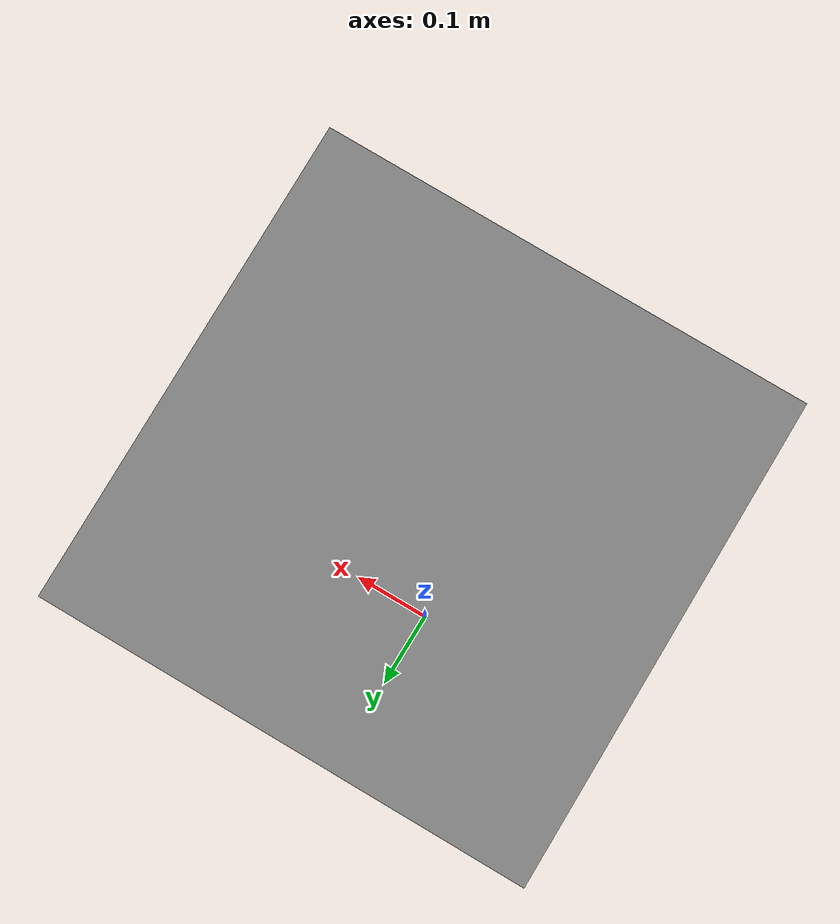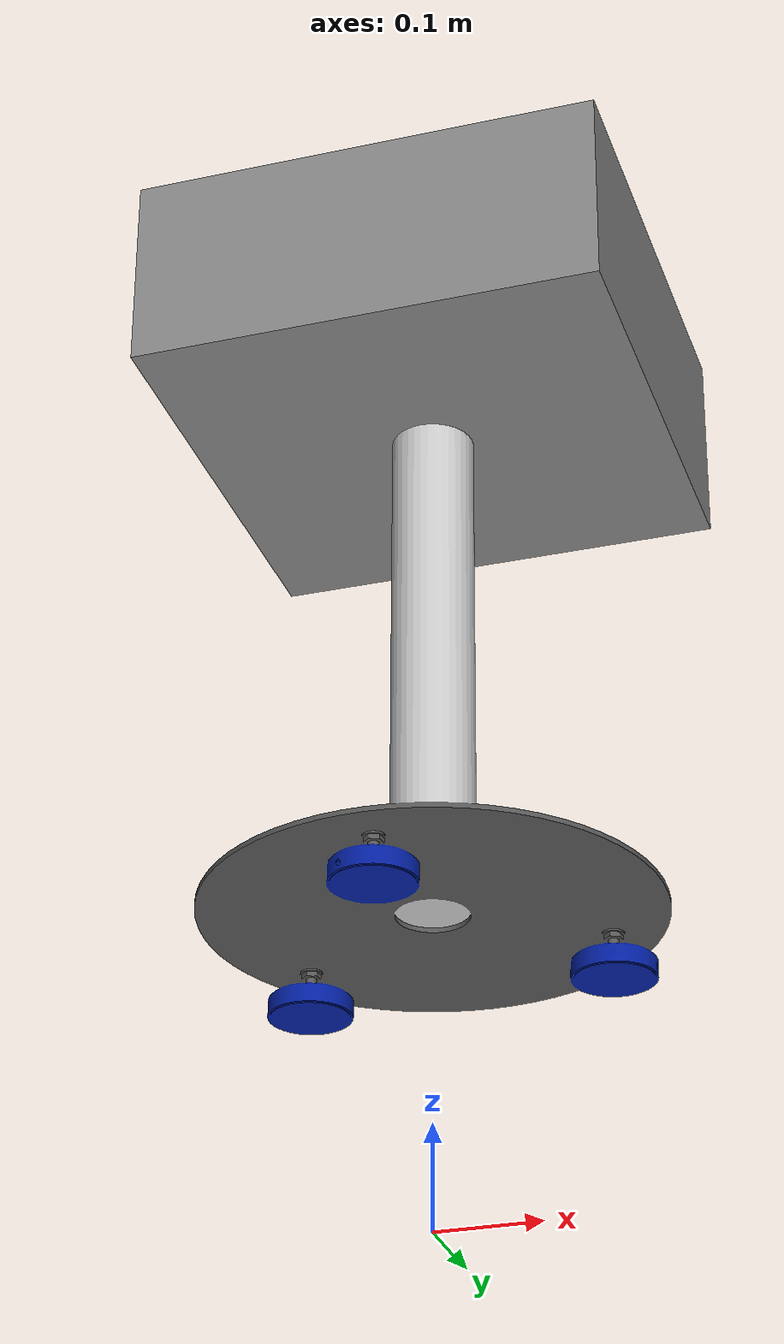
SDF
<?xml version="1.0"?>
<sdf version="1.5">
  <model name="spacecraft-simulator">
    <pose>0 0 0.25 0 0 0</pose>
    <!-- static = false allows the object to be movable -->
    <static>false</static>
    <link name="spacecraft-simulator">
      <inertial>
        <!-- should spawn 0.25 m off the ground to account for blackroom floor thickness. -->
        <mass>15</mass>
      </inertial>
      <collision name="collision">
        <geometry>
          <mesh>
            <uri>model://spacecraft-simulator/mesh/spacecraft-simulator-simple.dae</uri>
          </mesh>
        </geometry>
        <surface>
          <!-- spacecraft simulators are designed to be frictionless -->
          <contact>
            <ode>
              <max_vel>0.5</max_vel>
            </ode>
          </contact>
          <friction>
            <torsional>
              <coefficient>0.0</coefficient>
            </torsional>
            <ode>
              <mu>0.0</mu>
              <mu2>0.0</mu2>
            </ode>
          </friction>
        </surface>
      </collision>
      <visual name="visual">
        <geometry>
          <mesh>
            <uri>model://spacecraft-simulator/mesh/spacecraft-simulator-simple.dae</uri>
          </mesh>
        </geometry>
      </visual>
    </link>
  </model>
</sdf>
